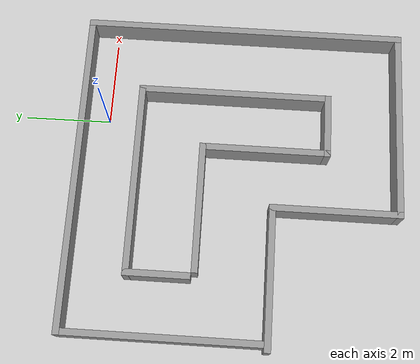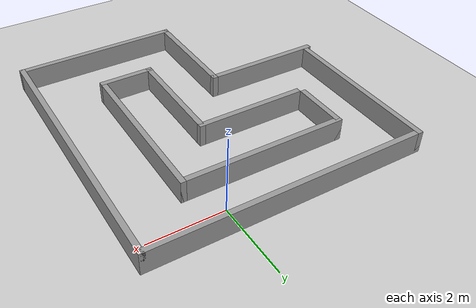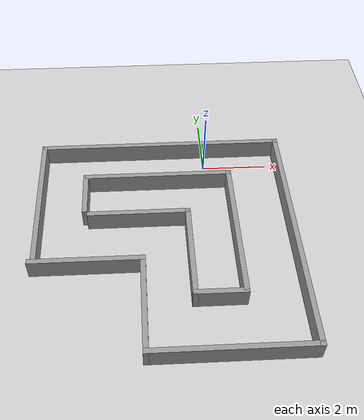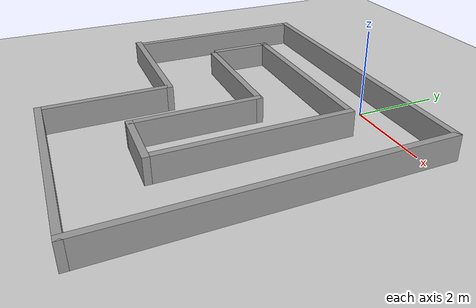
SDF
<sdf version="1.7">
 <world name="default">
  <light name="sun" type="directional">
   <pose>0 0 10 0 -0 0</pose>
   <diffuse>0.8 0.8 0.8 1</diffuse>
   <specular>0.2 0.2 0.2 1</specular>
   <attenuation>
    <range>1000</range>
    <constant>0.9</constant>
    <linear>0.01</linear>
    <quadratic>0.001</quadratic>
   </attenuation>
   <direction>-0.5 0.1 -0.9</direction>
   <spot><inner_angle>0</inner_angle><outer_angle>0</outer_angle><falloff>0</falloff></spot>
  </light>
  <model name="ground_plane">
   <static>1</static>
   <link name="link">
    <collision name="collision">
     <geometry><plane><normal>0 0 1</normal><size>100 100</size></plane></geometry>
     <surface><friction><ode><mu>100</mu><mu2>50</mu2></ode></friction></surface>
    </collision>
    <visual name="visual">
     <cast_shadows>0</cast_shadows>
     <geometry><plane><normal>0 0 1</normal><size>100 100</size></plane></geometry>
     <material>
      <script><uri>file://media/materials/scripts/gazebo.material</uri><name>Gazebo/Grey</name></script>
     </material>
    </visual>
   </link>
  </model>
  <gravity>0 0 -9.8</gravity>
  <magnetic_field>6e-06 2.3e-05 -4.2e-05</magnetic_field>
  <atmosphere type="adiabatic"/>
  <physics type="ode">
   <max_step_size>0.001</max_step_size>
   <real_time_factor>1</real_time_factor>
   <real_time_update_rate>1000</real_time_update_rate>
  </physics>
  <scene><ambient>0.4 0.4 0.4 1</ambient><background>0.7 0.7 0.7 1</background><shadows>1</shadows></scene>
  <audio><device>default</device></audio>
  <spherical_coordinates>
   <surface_model>EARTH_WGS84</surface_model>
   <latitude_deg>0</latitude_deg>
   <longitude_deg>0</longitude_deg>
   <elevation>0</elevation>
   <heading_deg>0</heading_deg>
  </spherical_coordinates>
  <model name="mapa_control">
   <pose>-1.39292 -3.092 0 0 -0 0</pose>
   <link name="Wall_0">
    <collision name="Wall_0_Collision">
     <geometry><box><size>4.5 0.15 0.6</size></box></geometry>
     <pose>0 0 0.3 0 -0 0</pose>
    </collision>
    <visual name="Wall_0_Visual">
     <pose>0 0 0.3 0 -0 0</pose>
     <geometry><box><size>4.5 0.15 0.6</size></box></geometry>
     <material>
      <script><uri>file://media/materials/scripts/gazebo.material</uri><name>Gazebo/Grey</name></script>
      <ambient>1 1 1 1</ambient>
     </material>
     <meta><layer>0</layer></meta>
    </visual>
    <pose>-3.625 1.5 0 0 -0 1.5708</pose>
   </link>
   <link name="Wall_11">
    <collision name="Wall_11_Collision">
     <geometry><box><size>7.5 0.15 0.6</size></box></geometry>
     <pose>0 0 0.3 0 -0 0</pose>
    </collision>
    <visual name="Wall_11_Visual">
     <pose>0 0 0.3 0 -0 0</pose>
     <geometry><box><size>7.5 0.15 0.6</size></box></geometry>
     <material>
      <script><uri>file://media/materials/scripts/gazebo.material</uri><name>Gazebo/Grey</name></script>
      <ambient>1 1 1 1</ambient>
     </material>
     <meta><layer>0</layer></meta>
    </visual>
    <pose>3.725 0 0 0 -0 -1.5708</pose>
   </link>
   <link name="Wall_12">
    <collision name="Wall_12_Collision">
     <geometry><box><size>4.5 0.15 0.6</size></box></geometry>
     <pose>0 0 0.3 0 -0 0</pose>
    </collision>
    <visual name="Wall_12_Visual">
     <pose>0 0 0.3 0 -0 0</pose>
     <geometry><box><size>4.5 0.15 0.6</size></box></geometry>
     <material>
      <script><uri>file://media/materials/scripts/gazebo.material</uri><name>Gazebo/Grey</name></script>
      <ambient>1 1 1 1</ambient>
     </material>
     <meta><layer>0</layer></meta>
    </visual>
    <pose>1.55 -3.675 0 0 -0 3.14159</pose>
   </link>
   <link name="Wall_13">
    <collision name="Wall_13_Collision">
     <geometry><box><size>3 0.15 0.6</size></box></geometry>
     <pose>0 0 0.3 0 -0 0</pose>
    </collision>
    <visual name="Wall_13_Visual">
     <pose>0 0 0.3 0 -0 0</pose>
     <geometry><box><size>3 0.15 0.6</size></box></geometry>
     <material>
      <script><uri>file://media/materials/scripts/gazebo.material</uri><name>Gazebo/Grey</name></script>
      <ambient>1 1 1 1</ambient>
     </material>
     <meta><layer>0</layer></meta>
    </visual>
    <pose>-0.625 -2.25 0 0 -0 1.5708</pose>
   </link>
   <link name="Wall_14">
    <collision name="Wall_14_Collision">
     <geometry><box><size>3.25 0.15 0.6</size></box></geometry>
     <pose>0 0 0.3 0 -0 0</pose>
    </collision>
    <visual name="Wall_14_Visual">
     <pose>0 0 0.3 0 -0 0</pose>
     <geometry><box><size>3.25 0.15 0.6</size></box></geometry>
     <material>
      <script><uri>file://media/materials/scripts/gazebo.material</uri><name>Gazebo/Grey</name></script>
      <ambient>1 1 1 1</ambient>
     </material>
     <meta><layer>0</layer></meta>
    </visual>
    <pose>-2.175 -0.825 0 0 -0 3.14159</pose>
   </link>
   <link name="Wall_24">
    <collision name="Wall_24_Collision">
     <geometry><box><size>4.5 0.15 0.6</size></box></geometry>
     <pose>0 0 0.3 0 -0 0</pose>
    </collision>
    <visual name="Wall_24_Visual">
     <pose>0 0 0.3 0 -0 0</pose>
     <geometry><box><size>4.5 0.15 0.6</size></box></geometry>
     <material>
      <script><uri>file://media/materials/scripts/gazebo.material</uri><name>Gazebo/Grey</name></script>
      <ambient>1 1 1 1</ambient>
     </material>
     <meta><layer>0</layer></meta>
    </visual>
    <pose>-0.1 2.325 0 0 -0 0</pose>
   </link>
   <link name="Wall_26">
    <collision name="Wall_26_Collision">
     <geometry><box><size>4.5 0.15 0.6</size></box></geometry>
     <pose>0 0 0.3 0 -0 0</pose>
    </collision>
    <visual name="Wall_26_Visual">
     <pose>0 0 0.3 0 -0 0</pose>
     <geometry><box><size>4.5 0.15 0.6</size></box></geometry>
     <material>
      <script><uri>file://media/materials/scripts/gazebo.material</uri><name>Gazebo/Grey</name></script>
      <ambient>1 1 1 1</ambient>
     </material>
     <meta><layer>0</layer></meta>
    </visual>
    <pose>2.075 0.15 0 0 -0 -1.5708</pose>
   </link>
   <link name="Wall_27">
    <collision name="Wall_27_Collision">
     <geometry><box><size>1.5 0.15 0.6</size></box></geometry>
     <pose>0 0 0.3 0 -0 0</pose>
    </collision>
    <visual name="Wall_27_Visual">
     <pose>0 0 0.3 0 -0 0</pose>
     <geometry><box><size>1.5 0.15 0.6</size></box></geometry>
     <material>
      <script><uri>file://media/materials/scripts/gazebo.material</uri><name>Gazebo/Grey</name></script>
      <ambient>1 1 1 1</ambient>
     </material>
     <meta><layer>0</layer></meta>
    </visual>
    <pose>1.4 -2.025 0 0 -0 3.14159</pose>
   </link>
   <link name="Wall_28">
    <collision name="Wall_28_Collision">
     <geometry><box><size>3 0.15 0.6</size></box></geometry>
     <pose>0 0 0.3 0 -0 0</pose>
    </collision>
    <visual name="Wall_28_Visual">
     <pose>0 0 0.3 0 -0 0</pose>
     <geometry><box><size>3 0.15 0.6</size></box></geometry>
     <material>
      <script><uri>file://media/materials/scripts/gazebo.material</uri><name>Gazebo/Grey</name></script>
      <ambient>1 1 1 1</ambient>
     </material>
     <meta><layer>0</layer></meta>
    </visual>
    <pose>0.725 -0.6 0 0 -0 1.5708</pose>
   </link>
   <link name="Wall_29">
    <collision name="Wall_29_Collision">
     <geometry><box><size>3 0.15 0.6</size></box></geometry>
     <pose>0 0 0.3 0 -0 0</pose>
    </collision>
    <visual name="Wall_29_Visual">
     <pose>0 0 0.3 0 -0 0</pose>
     <geometry><box><size>3 0.15 0.6</size></box></geometry>
     <material>
      <script><uri>file://media/materials/scripts/gazebo.material</uri><name>Gazebo/Grey</name></script>
      <ambient>1 1 1 1</ambient>
     </material>
     <meta><layer>0</layer></meta>
    </visual>
    <pose>-0.7 0.825 0 0 -0 3.14159</pose>
   </link>
   <link name="Wall_32">
    <collision name="Wall_32_Collision">
     <geometry><box><size>1.5 0.15 0.6</size></box></geometry>
     <pose>0 0 0.3 0 -0 0</pose>
    </collision>
    <visual name="Wall_32_Visual">
     <pose>0 0 0.3 0 -0 0</pose>
     <geometry><box><size>1.5 0.15 0.6</size></box></geometry>
     <material>
      <script><uri>file://media/materials/scripts/gazebo.material</uri><name>Gazebo/Grey</name></script>
      <ambient>1 1 1 1</ambient>
     </material>
     <meta><layer>0</layer></meta>
    </visual>
    <pose>-2.275 1.65 0 0 0 -1.5708</pose>
   </link>
   <link name="Wall_9">
    <collision name="Wall_9_Collision">
     <geometry><box><size>7.5 0.15 0.6</size></box></geometry>
     <pose>0 0 0.3 0 -0 0</pose>
    </collision>
    <visual name="Wall_9_Visual">
     <pose>0 0 0.3 0 -0 0</pose>
     <geometry><box><size>7.5 0.15 0.6</size></box></geometry>
     <material>
      <script><uri>file://media/materials/scripts/gazebo.material</uri><name>Gazebo/Grey</name></script>
      <ambient>1 1 1 1</ambient>
     </material>
     <meta><layer>0</layer></meta>
    </visual>
    <pose>0.05 3.675 0 0 -0 0</pose>
   </link>
   <static>1</static>
  </model>
 </world>
</sdf>
